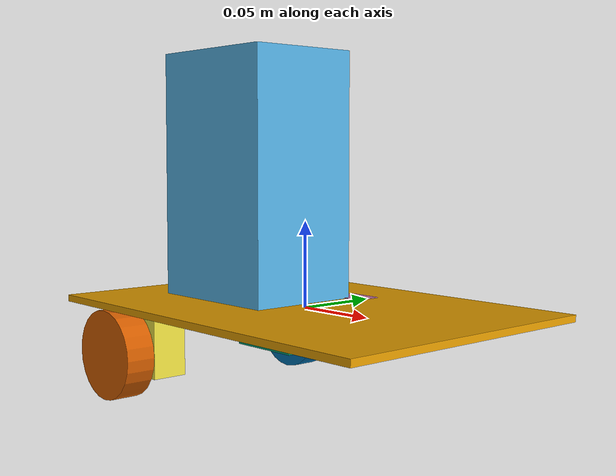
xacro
<?xml version="1.0"?>
<robot xmlns:xacro="http://www.ros.org/wiki/xacro" name="garry">

	<xacro:property name="base_x_len" value="0.25"/>
	<xacro:property name="base_y_len" value="0.17"/>
	<xacro:property name="base_z_len" value="0.004"/>

	<xacro:property name="board_x_back" value="0.035"/>
	<xacro:property name="board_y_len" value="0.07"/>
	<xacro:property name="board_x_len" value="0.09"/>
	<xacro:property name="board_z_len" value="0.15"/>
	<xacro:property name="board_x_origin" value="${-(base_x_len/2-board_x_back-board_x_len/2)}"/>

	<xacro:property name="wheel_d" value="0.054"/>
	<xacro:property name="wheel_th" value="0.018"/>
	<xacro:property name="wheel_x_origin" value="${board_x_origin}"/>
	<xacro:property name="wheel_y_origin" value="0.055"/>
	<xacro:property name="wheel_z_origin" value="${-wheel_d/2-1.5*base_z_len}"/>

	<xacro:property name="gearbox_y_origin" value="0.026"/>
	<xacro:property name="gearbox_y_len" value="0.0215"/>
	<xacro:property name="gearbox_z_len" value="0.042"/>
	<xacro:property name="gearbox_y_joint" value="${gearbox_y_origin+gearbox_y_len/2+wheel_th/2}"/>
	<xacro:property name="gearbox_z_origin" value="${-gearbox_z_len/2-base_z_len}"/>

    <xacro:property name="imu_x_origin" value="0.00"/>
	<xacro:property name="imu_y_origin" value="0.04"/>
	<xacro:property name="imu_y_len" value="0.017"/>
	<xacro:property name="imu_x_len" value="0.022"/>
	<xacro:property name="imu_z_len" value="0.001"/>
	<xacro:property name="imu_yaw" value="${0}"/>
	<xacro:property name="imu_roll" value="${pi}"/>

	<xacro:property name="raspi_cam_z_origin" value="0.15"/>

	<xacro:property name="webcam_y_origin" value="0.016"/>
	<xacro:property name="webcam_x_origin" value="${-(base_x_len/2-board_x_back)}"/>
	<xacro:property name="webcam_z_origin" value="${raspi_cam_z_origin}"/>

	<link name="base_link">
		<visual>
			<geometry>
				<box size="${base_x_len} ${base_y_len} ${base_z_len}"/>
			</geometry>
		</visual>
		<collision>
			<geometry>
				<box size="${base_x_len} ${base_y_len} ${base_z_len}"/>
			</geometry>
		</collision>
	</link>

	<link name="boards_link">
		<visual>
			<geometry>
				<box size="${board_x_len} ${board_y_len} ${board_z_len}"/>
			</geometry>
		</visual>
		<collision>
			<geometry>
				<box size="${board_x_len} ${board_y_len} ${board_z_len}"/>
			</geometry>
		</collision>
	</link>

	<joint name="base_to_board" type="fixed">
		<parent link="base_link"/>
		<child link="boards_link"/>
		<origin xyz="${board_x_origin} 0.0 ${board_z_len/2}"/>
	</joint>

	<link name="right_gearbox">
		<visual>
			<origin xyz="${wheel_x_origin} ${gearbox_y_origin} ${gearbox_z_origin}"/>
			<geometry>
				<box size="${wheel_d} ${gearbox_y_len}  ${gearbox_z_len}"/>
			</geometry>
		</visual>
		<collision>
			<geometry>
				<box size=" ${wheel_d} ${gearbox_y_len} ${gearbox_z_len}"/>
			</geometry>
		</collision>
	</link>

	<link name="left_gearbox">
		<visual>
			<origin xyz="${wheel_x_origin} ${-gearbox_y_origin}  ${gearbox_z_origin}"/>
			<geometry>
				<box size="${wheel_d} ${gearbox_y_len}  ${gearbox_z_len}"/>
			</geometry>
		</visual>
		<collision>
			<geometry>
				<box size="${wheel_d} ${gearbox_y_len}  ${gearbox_z_len}"/>
			</geometry>
		</collision>
	</link>

	<link name="right_wheel">
		<visual>
			<origin rpy=" 0.0 ${pi/2} ${pi/2} "/>
			<geometry>
				<cylinder length="${wheel_th}" radius="${wheel_d/2}"/>
			</geometry>
		</visual>
		<collision>
			<geometry>
				<cylinder length="${wheel_th}" radius="${wheel_d/2}"/>
			</geometry>
		</collision>
	</link>

	<link name="left_wheel">
		<visual>
			<origin rpy="0.0 ${pi/2} ${pi/2} "/>
			<geometry>
				<cylinder length="${wheel_th}" radius="${wheel_d/2}"/>
			</geometry>
		</visual>
		<collision>
			<geometry>
				<cylinder length="${wheel_th}" radius="${wheel_d/2}"/>
			</geometry>
		</collision>
	</link>

	<joint name="left_wheel_to_left_gearbox" type="fixed">
		<parent link="left_gearbox"/>
		<child link="left_wheel"/>
		<origin xyz=" ${wheel_x_origin} ${-gearbox_y_joint} ${wheel_z_origin}"/>
		<axis xyz="-1 0 0"/>
	</joint>

	<joint name="left_gearbox_to_base" type="fixed">
		<parent link="base_link"/>
		<child link="left_gearbox"/>
		<origin xyz=" ${wheel_x_origin} ${-gearbox_y_origin} ${base_z_len/2}"/>
	</joint>

	<joint name="right_wheel_to_right_gearbox" type="fixed">
		<parent link="right_gearbox"/>
		<child link="right_wheel"/>
		<origin xyz="${wheel_x_origin} ${gearbox_y_joint} ${wheel_z_origin}"/>
		<axis xyz="-1 0 0"/>
	</joint>

	<joint name="right_gearbox_to_base" type="fixed">
		<parent link="base_link"/>
		<child link="right_gearbox"/>
		<origin xyz="${wheel_x_origin} ${gearbox_y_origin} ${base_z_len/2}"/>
	</joint>

	<link name="base_imu_link">
		<visual>
			<geometry>
				<box size="${imu_x_len} ${imu_y_len} ${imu_z_len}"/>
			</geometry>
		</visual>
		<collision>
			<geometry>
				<box size="${imu_x_len} ${imu_y_len} ${imu_z_len}"/>
			</geometry>
		</collision>
	</link>

	<joint name="imu_to_base" type="fixed">
		<parent link="base_link"/>
		<child link="base_imu_link"/>
		<origin xyz=" ${imu_x_origin} ${imu_y_origin} ${base_z_len/2}" rpy="${imu_roll} 0.0 ${imu_yaw}"/>
	</joint>

	<link name="webcam_link"/>
	<joint name="webcam_to_base" type="fixed">
		<parent link="base_link"/>
		<child link="webcam_link"/>
		<origin xyz="0.0 ${webcam_y_origin} ${raspi_cam_z_origin}"/>
	</joint>

	<link name="raspicam_link"/>
	<joint name="raspicam_to_base" type="fixed">
		<parent link="base_link"/>
		<child link="raspicam_link"/>
		<origin xyz="${webcam_x_origin} 0.0 ${webcam_z_origin}"/>
	</joint>

</robot>
